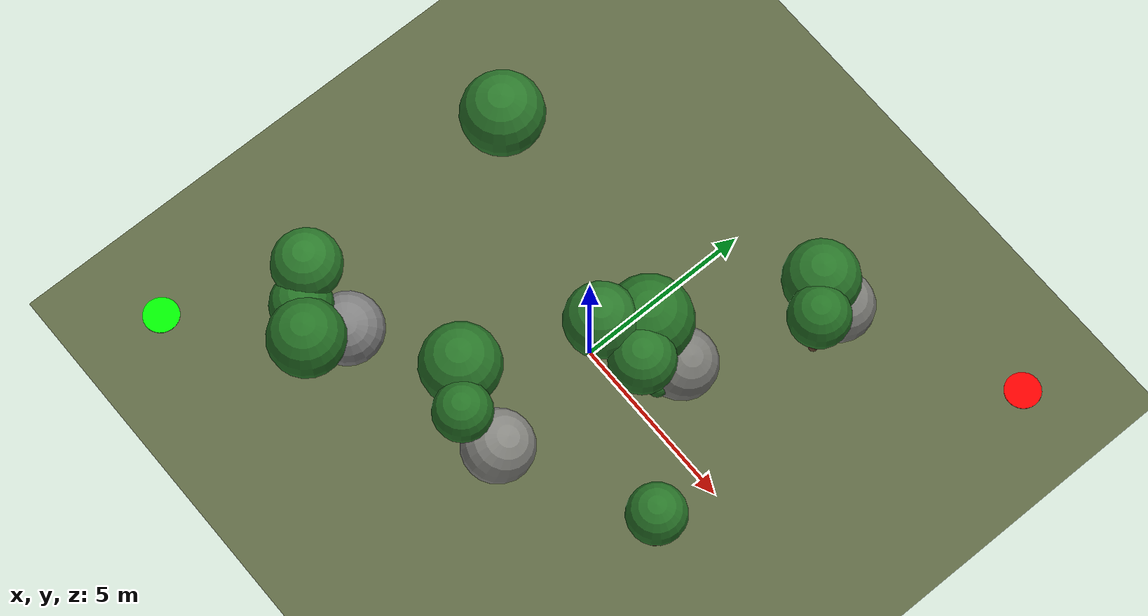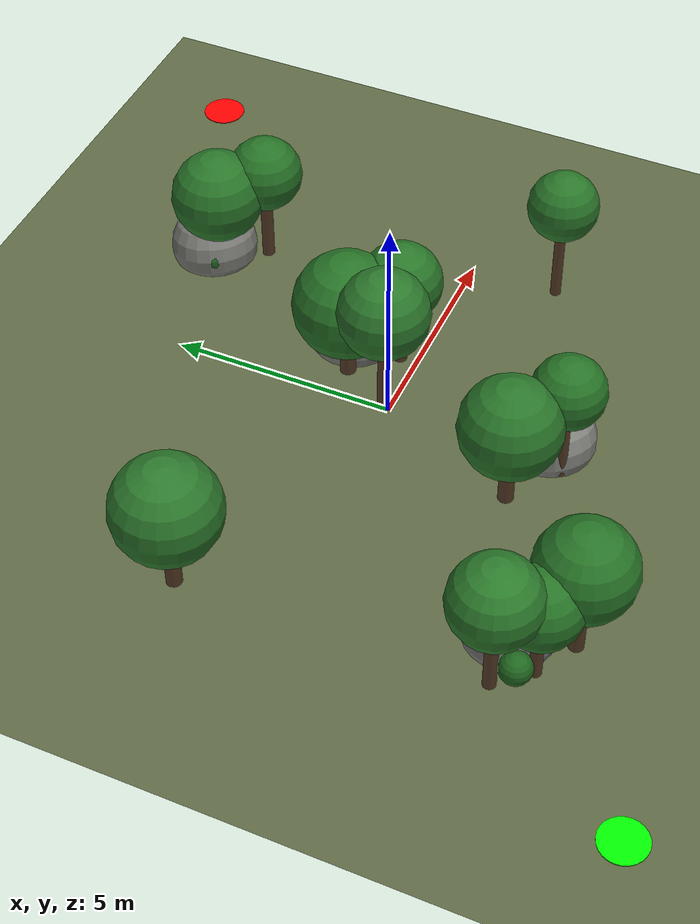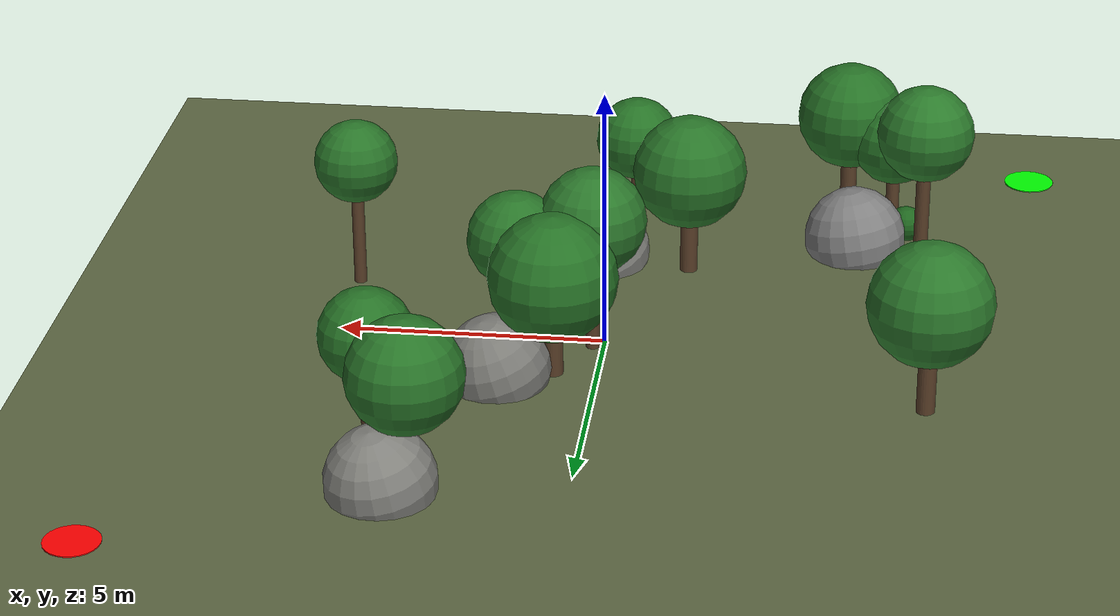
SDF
<?xml version="1.0" ?>
<sdf version="1.9">
  <world name="forest_world">

    <!-- Core system plugins (required by Gazebo Harmonic/gz-sim) -->
    <plugin
      filename="gz-sim-physics-system"
      name="gz::sim::systems::Physics">
    </plugin>
    <plugin
      filename="gz-sim-user-commands-system"
      name="gz::sim::systems::UserCommands">
    </plugin>
    <plugin
      filename="gz-sim-scene-broadcaster-system"
      name="gz::sim::systems::SceneBroadcaster">
    </plugin>
    <plugin
      filename="gz-sim-sensors-system"
      name="gz::sim::systems::Sensors">
      <render_engine>ogre2</render_engine>
    </plugin>

    <!-- Lightweight physics settings -->
    <physics name="default_physics" type="dart">
      <max_step_size>0.004</max_step_size>
      <real_time_factor>1.0</real_time_factor>
      <real_time_update_rate>250</real_time_update_rate>
    </physics>

    <!-- Scene / lighting: no shadows, clear sky, minimal cost -->
    <scene>
      <ambient>0.7 0.7 0.7 1</ambient>
      <background>0.72 0.82 0.93 1</background>
      <shadows>false</shadows>
      <grid>false</grid>
      <sky></sky>
    </scene>

    <light type="directional" name="sun">
      <cast_shadows>false</cast_shadows>
      <pose>0 0 10 0 0 0</pose>
      <diffuse>0.9 0.9 0.85 1</diffuse>
      <specular>0.2 0.2 0.2 1</specular>
      <direction>-0.4 0.2 -0.9</direction>
      <intensity>1.0</intensity>
    </light>

    <!-- Flat ground plane -->
    <model name="ground_plane">
      <static>true</static>
      <link name="link">
        <collision name="collision">
          <geometry>
            <plane>
              <normal>0 0 1</normal>
              <size>60 60</size>
            </plane>
          </geometry>
          <surface>
            <friction>
              <ode>
                <mu>0.9</mu>
                <mu2>0.9</mu2>
              </ode>
            </friction>
          </surface>
        </collision>
        <visual name="visual">
          <geometry>
            <plane>
              <normal>0 0 1</normal>
              <size>60 60</size>
            </plane>
          </geometry>
          <material>
            <ambient>0.28 0.3 0.2 1</ambient>
            <diffuse>0.36 0.4 0.26 1</diffuse>
            <specular>0.05 0.05 0.05 1</specular>
          </material>
        </visual>
      </link>
    </model>

    <!-- START / GOAL MARKERS                                   -->
    <!-- Visual-only flat disks (no collision) so they never    -->
    <!-- interfere with A* / obstacle avoidance.                 -->
    <!-- the start/goal used in your existing arena world if     -->
    <!-- they differ from these defaults (-8 -8 / 8 8).          -->
    <model name="start_marker">
      <static>true</static>
      <pose>-8 -8 0.01 0 0 0</pose>
      <link name="link">
        <visual name="visual">
          <geometry>
            <cylinder>
              <radius>0.5</radius>
              <length>0.02</length>
            </cylinder>
          </geometry>
          <material>
            <ambient>0 1 0 1</ambient>
            <diffuse>0 1 0 1</diffuse>
            <emissive>0 0.3 0 1</emissive>
          </material>
        </visual>
      </link>
    </model>

    <model name="goal_marker">
      <static>true</static>
      <pose>8 8 0.01 0 0 0</pose>
      <link name="link">
        <visual name="visual">
          <geometry>
            <cylinder>
              <radius>0.5</radius>
              <length>0.02</length>
            </cylinder>
          </geometry>
          <material>
            <ambient>1 0 0 1</ambient>
            <diffuse>1 0 0 1</diffuse>
            <emissive>0.3 0 0 1</emissive>
          </material>
        </visual>
      </link>
    </model>

    <!-- SPARSE FOREST (v3.0.1 -> v3.0.1.1 realism pass)         -->
    <!-- All obstacles are simple primitives (cylinder trunk +   -->
    <!-- sphere canopy for trees; ellipsoids for rocks/bushes).  -->
    <!-- Static, low poly count, no physics-intensive shapes.    -->
    <!-- Trees are grouped into natural clusters (3 + 2 + 3 + 2  -->
    <!-- plus 2 isolated singles = 12) instead of an even grid,  -->
    <!-- with open clearings between clusters. Cluster C sits    -->
    <!-- on the direct Start->Goal diagonal and blocks it. Three -->
    <!-- distinct corridors remain: an upper-left route past the-->
    <!-- isolated tree near (-6, 2), a lower-right route past    -->
    <!-- the isolated tree near (5, -2), and a middle route      -->
    <!-- threading the clearings between clusters A/B, C, and D. -->
    <!-- All gaps are wide enough that no route is ever fully    -->
    <!-- enclosed, so the drone cannot become trapped.           -->

    <!-- CLUSTER A (3 trees) - lower-left, near Start           -->

    <!-- Tree 1 (Cluster A) -->
    <model name="tree_1">
      <static>true</static>
      <pose>-5.2 -5.3 0 0 0 0.3</pose>
      <link name="link">
        <collision name="trunk_collision">
          <geometry><cylinder><radius>0.13</radius><length>1.6</length></cylinder></geometry>
          <pose>0 0 0.8 0 0 0</pose>
        </collision>
        <visual name="trunk_visual">
          <geometry><cylinder><radius>0.13</radius><length>1.6</length></cylinder></geometry>
          <pose>0 0 0.8 0 0 0</pose>
          <material><ambient>0.36 0.25 0.16 1</ambient><diffuse>0.36 0.25 0.16 1</diffuse></material>
        </visual>
        <visual name="canopy_visual">
          <geometry><sphere><radius>0.85</radius></sphere></geometry>
          <pose>0 0 2.0 0 0 0</pose>
          <material><ambient>0.15 0.45 0.15 1</ambient><diffuse>0.15 0.45 0.15 1</diffuse></material>
        </visual>
      </link>
    </model>

    <!-- Tree 2 (Cluster A) -->
    <model name="tree_2">
      <static>true</static>
      <pose>-4.3 -5.8 0 0 0 1.1</pose>
      <link name="link">
        <collision name="trunk_collision">
          <geometry><cylinder><radius>0.16</radius><length>1.9</length></cylinder></geometry>
          <pose>0 0 0.95 0 0 0</pose>
        </collision>
        <visual name="trunk_visual">
          <geometry><cylinder><radius>0.16</radius><length>1.9</length></cylinder></geometry>
          <pose>0 0 0.95 0 0 0</pose>
          <material><ambient>0.36 0.25 0.16 1</ambient><diffuse>0.36 0.25 0.16 1</diffuse></material>
        </visual>
        <visual name="canopy_visual">
          <geometry><sphere><radius>1.05</radius></sphere></geometry>
          <pose>0 0 2.3 0 0 0</pose>
          <material><ambient>0.15 0.45 0.15 1</ambient><diffuse>0.15 0.45 0.15 1</diffuse></material>
        </visual>
      </link>
    </model>

    <!-- Tree 3 (Cluster A) -->
    <model name="tree_3">
      <static>true</static>
      <pose>-5.8 -4.6 0 0 0 2.2</pose>
      <link name="link">
        <collision name="trunk_collision">
          <geometry><cylinder><radius>0.14</radius><length>2.1</length></cylinder></geometry>
          <pose>0 0 1.05 0 0 0</pose>
        </collision>
        <visual name="trunk_visual">
          <geometry><cylinder><radius>0.14</radius><length>2.1</length></cylinder></geometry>
          <pose>0 0 1.05 0 0 0</pose>
          <material><ambient>0.36 0.25 0.16 1</ambient><diffuse>0.36 0.25 0.16 1</diffuse></material>
        </visual>
        <visual name="canopy_visual">
          <geometry><sphere><radius>0.95</radius></sphere></geometry>
          <pose>0 0 2.5 0 0 0</pose>
          <material><ambient>0.17 0.48 0.17 1</ambient><diffuse>0.17 0.48 0.17 1</diffuse></material>
        </visual>
      </link>
    </model>

    <!-- Open clearing between Cluster A and Cluster B          -->

    <!-- CLUSTER B (2 trees) - lower-mid                        -->

    <!-- Tree 4 (Cluster B) -->
    <model name="tree_4">
      <static>true</static>
      <pose>-1.3 -3.2 0 0 0 0.7</pose>
      <link name="link">
        <collision name="trunk_collision">
          <geometry><cylinder><radius>0.17</radius><length>1.7</length></cylinder></geometry>
          <pose>0 0 0.85 0 0 0</pose>
        </collision>
        <visual name="trunk_visual">
          <geometry><cylinder><radius>0.17</radius><length>1.7</length></cylinder></geometry>
          <pose>0 0 0.85 0 0 0</pose>
          <material><ambient>0.36 0.25 0.16 1</ambient><diffuse>0.36 0.25 0.16 1</diffuse></material>
        </visual>
        <visual name="canopy_visual">
          <geometry><sphere><radius>1.1</radius></sphere></geometry>
          <pose>0 0 2.1 0 0 0</pose>
          <material><ambient>0.16 0.46 0.16 1</ambient><diffuse>0.16 0.46 0.16 1</diffuse></material>
        </visual>
      </link>
    </model>

    <!-- Tree 5 (Cluster B) -->
    <model name="tree_5">
      <static>true</static>
      <pose>-0.2 -4.0 0 0 0 1.8</pose>
      <link name="link">
        <collision name="trunk_collision">
          <geometry><cylinder><radius>0.12</radius><length>2.0</length></cylinder></geometry>
          <pose>0 0 1.0 0 0 0</pose>
        </collision>
        <visual name="trunk_visual">
          <geometry><cylinder><radius>0.12</radius><length>2.0</length></cylinder></geometry>
          <pose>0 0 1.0 0 0 0</pose>
          <material><ambient>0.36 0.25 0.16 1</ambient><diffuse>0.36 0.25 0.16 1</diffuse></material>
        </visual>
        <visual name="canopy_visual">
          <geometry><sphere><radius>0.8</radius></sphere></geometry>
          <pose>0 0 2.4 0 0 0</pose>
          <material><ambient>0.15 0.45 0.15 1</ambient><diffuse>0.15 0.45 0.15 1</diffuse></material>
        </visual>
      </link>
    </model>

    <!-- Large clearing before Cluster C                        -->

    <!-- CLUSTER C (3 trees) - center, blocks the direct        -->
    <!-- Start->Goal diagonal                                   -->

    <!-- Tree 6 (Cluster C) -->
    <model name="tree_6">
      <static>true</static>
      <pose>0.8 1.3 0 0 0 0.4</pose>
      <link name="link">
        <collision name="trunk_collision">
          <geometry><cylinder><radius>0.18</radius><length>1.55</length></cylinder></geometry>
          <pose>0 0 0.775 0 0 0</pose>
        </collision>
        <visual name="trunk_visual">
          <geometry><cylinder><radius>0.18</radius><length>1.55</length></cylinder></geometry>
          <pose>0 0 0.775 0 0 0</pose>
          <material><ambient>0.36 0.25 0.16 1</ambient><diffuse>0.36 0.25 0.16 1</diffuse></material>
        </visual>
        <visual name="canopy_visual">
          <geometry><sphere><radius>1.2</radius></sphere></geometry>
          <pose>0 0 1.95 0 0 0</pose>
          <material><ambient>0.15 0.45 0.15 1</ambient><diffuse>0.15 0.45 0.15 1</diffuse></material>
        </visual>
      </link>
    </model>

    <!-- Tree 7 (Cluster C) -->
    <model name="tree_7">
      <static>true</static>
      <pose>1.6 0.4 0 0 0 1.5</pose>
      <link name="link">
        <collision name="trunk_collision">
          <geometry><cylinder><radius>0.15</radius><length>1.85</length></cylinder></geometry>
          <pose>0 0 0.925 0 0 0</pose>
        </collision>
        <visual name="trunk_visual">
          <geometry><cylinder><radius>0.15</radius><length>1.85</length></cylinder></geometry>
          <pose>0 0 0.925 0 0 0</pose>
          <material><ambient>0.36 0.25 0.16 1</ambient><diffuse>0.36 0.25 0.16 1</diffuse></material>
        </visual>
        <visual name="canopy_visual">
          <geometry><sphere><radius>0.9</radius></sphere></geometry>
          <pose>0 0 2.25 0 0 0</pose>
          <material><ambient>0.16 0.46 0.16 1</ambient><diffuse>0.16 0.46 0.16 1</diffuse></material>
        </visual>
      </link>
    </model>

    <!-- Tree 8 (Cluster C) -->
    <model name="tree_8">
      <static>true</static>
      <pose>0.2 0.2 0 0 0 2.6</pose>
      <link name="link">
        <collision name="trunk_collision">
          <geometry><cylinder><radius>0.13</radius><length>2.2</length></cylinder></geometry>
          <pose>0 0 1.1 0 0 0</pose>
        </collision>
        <visual name="trunk_visual">
          <geometry><cylinder><radius>0.13</radius><length>2.2</length></cylinder></geometry>
          <pose>0 0 1.1 0 0 0</pose>
          <material><ambient>0.36 0.25 0.16 1</ambient><diffuse>0.36 0.25 0.16 1</diffuse></material>
        </visual>
        <visual name="canopy_visual">
          <geometry><sphere><radius>1.0</radius></sphere></geometry>
          <pose>0 0 2.6 0 0 0</pose>
          <material><ambient>0.17 0.47 0.17 1</ambient><diffuse>0.17 0.47 0.17 1</diffuse></material>
        </visual>
      </link>
    </model>

    <!-- Clearing between Cluster C and Cluster D                -->

    <!-- CLUSTER D (2 trees) - upper-mid                        -->

    <!-- Tree 9 (Cluster D) -->
    <model name="tree_9">
      <static>true</static>
      <pose>2.8 5.4 0 0 0 0.9</pose>
      <link name="link">
        <collision name="trunk_collision">
          <geometry><cylinder><radius>0.16</radius><length>1.65</length></cylinder></geometry>
          <pose>0 0 0.825 0 0 0</pose>
        </collision>
        <visual name="trunk_visual">
          <geometry><cylinder><radius>0.16</radius><length>1.65</length></cylinder></geometry>
          <pose>0 0 0.825 0 0 0</pose>
          <material><ambient>0.36 0.25 0.16 1</ambient><diffuse>0.36 0.25 0.16 1</diffuse></material>
        </visual>
        <visual name="canopy_visual">
          <geometry><sphere><radius>1.05</radius></sphere></geometry>
          <pose>0 0 2.05 0 0 0</pose>
          <material><ambient>0.16 0.46 0.16 1</ambient><diffuse>0.16 0.46 0.16 1</diffuse></material>
        </visual>
      </link>
    </model>

    <!-- Tree 10 (Cluster D) -->
    <model name="tree_10">
      <static>true</static>
      <pose>3.6 4.6 0 0 0 2.0</pose>
      <link name="link">
        <collision name="trunk_collision">
          <geometry><cylinder><radius>0.14</radius><length>1.95</length></cylinder></geometry>
          <pose>0 0 0.975 0 0 0</pose>
        </collision>
        <visual name="trunk_visual">
          <geometry><cylinder><radius>0.14</radius><length>1.95</length></cylinder></geometry>
          <pose>0 0 0.975 0 0 0</pose>
          <material><ambient>0.36 0.25 0.16 1</ambient><diffuse>0.36 0.25 0.16 1</diffuse></material>
        </visual>
        <visual name="canopy_visual">
          <geometry><sphere><radius>0.85</radius></sphere></geometry>
          <pose>0 0 2.35 0 0 0</pose>
          <material><ambient>0.15 0.45 0.15 1</ambient><diffuse>0.15 0.45 0.15 1</diffuse></material>
        </visual>
      </link>
    </model>

    <!-- Isolated single trees (each its own small clearing)    -->

    <!-- Tree 11 (isolated, upper-left - anchors the left corridor) -->
    <model name="tree_11">
      <static>true</static>
      <pose>-6 2 0 0 0 1.3</pose>
      <link name="link">
        <collision name="trunk_collision">
          <geometry><cylinder><radius>0.17</radius><length>1.75</length></cylinder></geometry>
          <pose>0 0 0.875 0 0 0</pose>
        </collision>
        <visual name="trunk_visual">
          <geometry><cylinder><radius>0.17</radius><length>1.75</length></cylinder></geometry>
          <pose>0 0 0.875 0 0 0</pose>
          <material><ambient>0.36 0.25 0.16 1</ambient><diffuse>0.36 0.25 0.16 1</diffuse></material>
        </visual>
        <visual name="canopy_visual">
          <geometry><sphere><radius>1.15</radius></sphere></geometry>
          <pose>0 0 2.15 0 0 0</pose>
          <material><ambient>0.17 0.47 0.17 1</ambient><diffuse>0.17 0.47 0.17 1</diffuse></material>
        </visual>
      </link>
    </model>

    <!-- Tree 12 (isolated, lower-right - anchors the right corridor) -->
    <model name="tree_12">
      <static>true</static>
      <pose>5 -2 0 0 0 2.9</pose>
      <link name="link">
        <collision name="trunk_collision">
          <geometry><cylinder><radius>0.12</radius><length>2.15</length></cylinder></geometry>
          <pose>0 0 1.075 0 0 0</pose>
        </collision>
        <visual name="trunk_visual">
          <geometry><cylinder><radius>0.12</radius><length>2.15</length></cylinder></geometry>
          <pose>0 0 1.075 0 0 0</pose>
          <material><ambient>0.36 0.25 0.16 1</ambient><diffuse>0.36 0.25 0.16 1</diffuse></material>
        </visual>
        <visual name="canopy_visual">
          <geometry><sphere><radius>0.8</radius></sphere></geometry>
          <pose>0 0 2.55 0 0 0</pose>
          <material><ambient>0.16 0.46 0.16 1</ambient><diffuse>0.16 0.46 0.16 1</diffuse></material>
        </visual>
      </link>
    </model>

    <!-- Rocks: placed beside tree clusters instead of scattered -->
    <model name="rock_1">
      <static>true</static>
      <pose>-4.5 -4.5 0.25 0.2 0.1 0.5</pose>
      <link name="link">
        <collision name="collision">
          <geometry><ellipsoid><radii_of_curvature>0.5 0.4 0.3</radii_of_curvature></ellipsoid></geometry>
        </collision>
        <visual name="visual">
          <geometry><ellipsoid><radii_of_curvature>0.5 0.4 0.3</radii_of_curvature></ellipsoid></geometry>
          <material><ambient>0.5 0.5 0.5 1</ambient><diffuse>0.5 0.5 0.5 1</diffuse></material>
        </visual>
      </link>
    </model>

    <model name="rock_2">
      <static>true</static>
      <pose>0.5 -3.5 0.2 0.1 0.3 1.1</pose>
      <link name="link">
        <collision name="collision">
          <geometry><ellipsoid><radii_of_curvature>0.4 0.35 0.25</radii_of_curvature></ellipsoid></geometry>
        </collision>
        <visual name="visual">
          <geometry><ellipsoid><radii_of_curvature>0.4 0.35 0.25</radii_of_curvature></ellipsoid></geometry>
          <material><ambient>0.52 0.52 0.5 1</ambient><diffuse>0.52 0.52 0.5 1</diffuse></material>
        </visual>
      </link>
    </model>

    <model name="rock_3">
      <static>true</static>
      <pose>1.8 1.6 0.22 0.3 0.0 2.0</pose>
      <link name="link">
        <collision name="collision">
          <geometry><ellipsoid><radii_of_curvature>0.45 0.4 0.28</radii_of_curvature></ellipsoid></geometry>
        </collision>
        <visual name="visual">
          <geometry><ellipsoid><radii_of_curvature>0.45 0.4 0.28</radii_of_curvature></ellipsoid></geometry>
          <material><ambient>0.48 0.48 0.46 1</ambient><diffuse>0.48 0.48 0.46 1</diffuse></material>
        </visual>
      </link>
    </model>

    <model name="rock_4">
      <static>true</static>
      <pose>3.2 5.8 0.2 0.0 0.2 0.7</pose>
      <link name="link">
        <collision name="collision">
          <geometry><ellipsoid><radii_of_curvature>0.4 0.3 0.25</radii_of_curvature></ellipsoid></geometry>
        </collision>
        <visual name="visual">
          <geometry><ellipsoid><radii_of_curvature>0.4 0.3 0.25</radii_of_curvature></ellipsoid></geometry>
          <material><ambient>0.5 0.5 0.48 1</ambient><diffuse>0.5 0.5 0.48 1</diffuse></material>
        </visual>
      </link>
    </model>

    <!-- Bushes: placed beside a tree trunk in each cluster      -->
    <!-- instead of standing alone                              -->
    <model name="bush_1">
      <static>true</static>
      <pose>-5.5 -5.0 0.35 0 0 0</pose>
      <link name="link">
        <collision name="collision">
          <geometry><sphere><radius>0.35</radius></sphere></geometry>
        </collision>
        <visual name="visual">
          <geometry><sphere><radius>0.35</radius></sphere></geometry>
          <material><ambient>0.12 0.4 0.12 1</ambient><diffuse>0.12 0.4 0.12 1</diffuse></material>
        </visual>
      </link>
    </model>

    <model name="bush_2">
      <static>true</static>
      <pose>1.9 0.7 0.3 0 0 0</pose>
      <link name="link">
        <collision name="collision">
          <geometry><sphere><radius>0.3</radius></sphere></geometry>
        </collision>
        <visual name="visual">
          <geometry><sphere><radius>0.3</radius></sphere></geometry>
          <material><ambient>0.14 0.42 0.14 1</ambient><diffuse>0.14 0.42 0.14 1</diffuse></material>
        </visual>
      </link>
    </model>

    <model name="bush_3">
      <static>true</static>
      <pose>2.6 5.5 0.32 0 0 0</pose>
      <link name="link">
        <collision name="collision">
          <geometry><sphere><radius>0.32</radius></sphere></geometry>
        </collision>
        <visual name="visual">
          <geometry><sphere><radius>0.32</radius></sphere></geometry>
          <material><ambient>0.13 0.41 0.13 1</ambient><diffuse>0.13 0.41 0.13 1</diffuse></material>
        </visual>
      </link>
    </model>

  </world>
</sdf>
